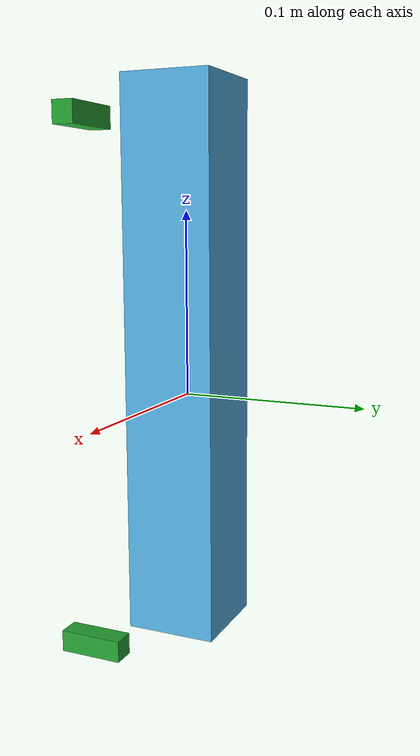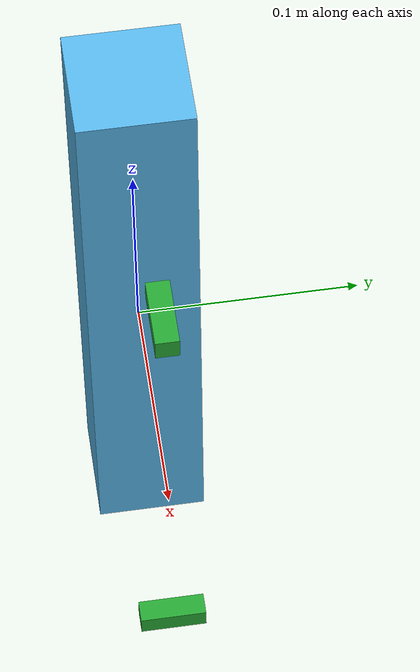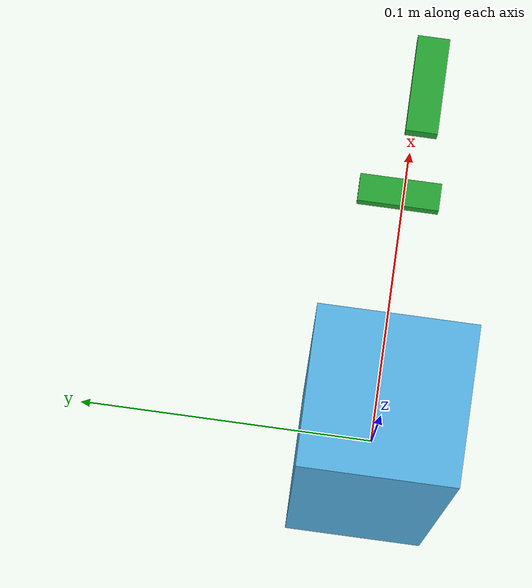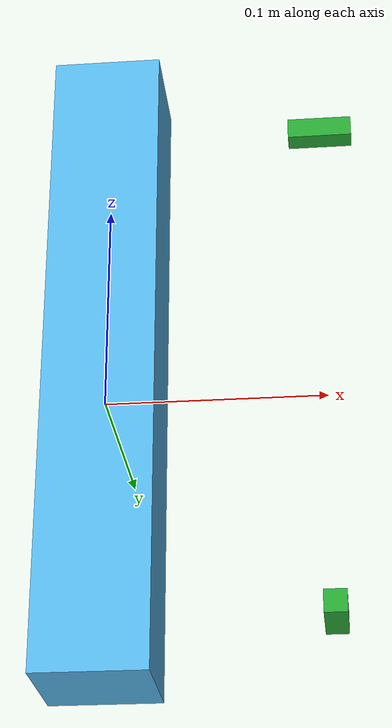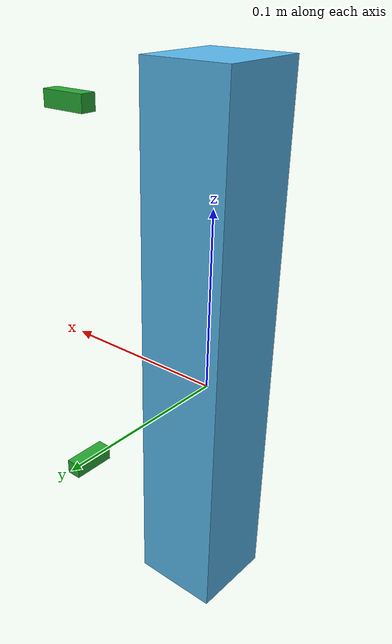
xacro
<?xml version="1.0"?>
<robot name="surveillance_camera_base" xmlns:xacro="http://www.ros.org/wiki/xacro">

  <!-- Included URDF/XACRO Files -->
  <xacro:include filename="$(find sim_environment)/urdf/camera_macro.xacro" />
  <xacro:include filename="$(find sim_environment)/urdf/ir_sensor_macro.xacro" />

  <!-- PROPERTY LIST -->
  <!--All units in m-kg-s-radians unit system -->
  <property name="M_PI" value="3.1415926535897931" />

  <!-- Main Body-base -->
  <property name="base_x_size" value="0.05" />
  <property name="base_y_size" value="0.05" />
  <property name="base_z_size" value="0.3" />
  <property name="base_mass" value="1000" /> <!-- in kg-->

  <!--Inertial macros for the box and cylinder. Units are kg*m^2-->
  <macro name="box_inertia" params="m x y z">
    <inertia  ixx="${m*(y*y+z*z)/12}" ixy = "0" ixz = "0"
              iyy="${m*(x*x+z*z)/12}" iyz = "0"
              izz="${m*(x*x+z*z)/12}" />
  </macro>

  <macro name="cylinder_inertia" params="m r h">
    <inertia  ixx="${m*(3*r*r+h*h)/12}" ixy = "0" ixz = "0"
              iyy="${m*(3*r*r+h*h)/12}" iyz = "0"
              izz="${m*r*r/2}" />
  </macro>
  <!-- BASE-FOOTPRINT -->
  <!-- base_footprint is a fictitious link(frame) that is on the ground right below base_link origin -->
  <link name="base_footprint">
    <visual>
        <origin xyz="0 0 0" rpy="0 0 0" />
        <geometry>
            <box size="0.001 0.001 0.001" />
        </geometry>
    </visual>
  </link>

  <gazebo reference="base_footprint">
    <turnGravityOff>false</turnGravityOff>
    <static>true</static>
  </gazebo>

  <!-- BASE-LINK -->
  <!--Actual body/chassis of the robot-->
  <link name="base_link">
    <inertial>
      <mass value="${base_mass}" />
      <origin xyz="0 0 0" />
      <!--The 3x3 rotational inertia matrix. -->
      <box_inertia  m="${base_mass}" x="${base_x_size}" y="${base_y_size}" z="${base_z_size}"/>
    </inertial>
    <visual>
      <origin xyz="0 0 0" rpy="0 0 ${-M_PI/2}" />
      <geometry>
        <box size="${base_x_size} ${base_y_size} ${base_z_size}"/>
      </geometry>
    </visual>
    <collision>
      <origin xyz="0 0 0" rpy="0 0 0 " />
      <geometry>
        <box size="${base_x_size} ${base_y_size} ${base_z_size}"/>
      </geometry>
    </collision>
  </link>
  <gazebo reference="base_link">
    <turnGravityOff>false</turnGravityOff>
  </gazebo>

  <joint name="base_footprint_joint" type="fixed">
    <origin xyz="0 0 0.02" rpy="0 0 0" />
    <parent link="base_footprint"/>
    <child link="base_link" />
  </joint>

  <!-- camera -->
  <camera_macro parent="base_link" prefix="surveillance_camera" xyz="0.1 0.0 0.12"/>
  <ir_sensor_macro parent="base_link" prefix="ir_sensor" xyz="0.1 0.0 -0.12"/>

  <gazebo>
    <plugin name="gazebo_ros_control" filename="libgazebo_ros_control.so" />
  </gazebo>

</robot>

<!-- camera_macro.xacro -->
<robot name="wheel_robot" xmlns:xacro="http://ros.org/wiki/xacro">
  <xacro:macro name="camera_macro" params="parent prefix xyz">
    <joint name="${prefix}_joint" type="fixed">
      <parent link="${parent}"/>
      <child  link="${prefix}_link"/>
      <origin xyz="${xyz}" rpy="${radians(-90)} 0 ${radians(-90)}"/>
    </joint>
    <link name="${prefix}_link">
      <visual>
        <origin xyz="0 0 0" rpy="0 0 0" />
        <geometry>
          <box size="0.01 0.01 0.03" />
        </geometry>
        <material name="Green" />
      </visual>
    </link>
    <gazebo reference="${prefix}_link">
      <sensor type="camera" name="${prefix}">
        <update_rate>10.0</update_rate>
        <camera name="${prefix}">
          <pose>0 0 0 0 ${radians(-90)} ${radians(90)}</pose>
          <horizontal_fov>2</horizontal_fov>
          <image>
            <width>320</width>
            <height>240</height>
            <format>R8G8B8</format>
          </image>
          <clip>
            <near>0.02</near>
            <far>300</far>
          </clip>
          <noise>
            <type>gaussian</type>
            <mean>0.0</mean>
            <stddev>0.007</stddev>
          </noise>
        </camera>
        <plugin name="camera_controller" filename="libgazebo_ros_camera.so">
          <alwaysOn>true</alwaysOn>
          <updateRate>0.0</updateRate>
          <cameraName>${prefix}</cameraName>
          <imageTopicName>image_raw</imageTopicName>
          <cameraInfoTopicName>camera_info</cameraInfoTopicName>
          <frameName>${prefix}_link</frameName>
          <hackBaseline>0.0</hackBaseline>
          <distortionK1>0.0</distortionK1>
          <distortionK2>0.0</distortionK2>
          <distortionK3>0.0</distortionK3>
          <distortionT1>0.0</distortionT1>
          <distortionT2>0.0</distortionT2>
        </plugin>
      </sensor>
    </gazebo>
  </xacro:macro>

  <xacro:macro name="camera_macro_640x480" params="parent prefix xyz">
    <joint name="${prefix}_joint" type="fixed">
      <parent link="${parent}"/>
      <child  link="${prefix}_link"/>
      <origin xyz="${xyz}" rpy="${radians(-90)} 0 ${radians(-90)}"/>
    </joint>
    <link name="${prefix}_link">
      <visual>
        <origin xyz="0 0 0" rpy="0 0 0" />
        <geometry>
          <box size="0.01 0.01 0.03" />
        </geometry>
        <material name="Green" />
      </visual>
    </link>
    <gazebo reference="${prefix}_link">
      <sensor type="camera" name="${prefix}">
        <update_rate>10.0</update_rate>
        <camera name="${prefix}">
          <pose>0 0 0 0 ${radians(-90)} ${radians(90)}</pose>
          <horizontal_fov>2</horizontal_fov>
          <image>
            <width>640</width>
            <height>480</height>
            <format>R8G8B8</format>
          </image>
          <clip>
            <near>0.02</near>
            <far>300</far>
          </clip>
          <noise>
            <type>gaussian</type>
            <mean>0.0</mean>
            <stddev>0.007</stddev>
          </noise>
        </camera>
        <plugin name="camera_controller" filename="libgazebo_ros_camera.so">
          <alwaysOn>true</alwaysOn>
          <updateRate>0.0</updateRate>
          <cameraName>${prefix}</cameraName>
          <imageTopicName>image_raw</imageTopicName>
          <cameraInfoTopicName>camera_info</cameraInfoTopicName>
          <frameName>${prefix}_link</frameName>
          <hackBaseline>0.0</hackBaseline>
          <distortionK1>0.0</distortionK1>
          <distortionK2>0.0</distortionK2>
          <distortionK3>0.0</distortionK3>
          <distortionT1>0.0</distortionT1>
          <distortionT2>0.0</distortionT2>
        </plugin>
      </sensor>
    </gazebo>
  </xacro:macro>

  <xacro:macro name="camera_macro_perspective_720x480" params="parent prefix xyz x_rot y_rot z_rot">
    <joint name="${prefix}_joint" type="fixed">
      <parent link="${parent}"/>
      <child  link="${prefix}_link"/>
      <origin xyz="${xyz}" rpy="${radians(-90)} 0 ${radians(-90)}"/>
    </joint>
    <link name="${prefix}_link">
      <visual>
        <origin xyz="0 0 0" rpy="0 0 0" />
        <geometry>
          <box size="0.01 0.01 0.03" />
        </geometry>
        <material name="Green" />
      </visual>
    </link>
    <gazebo reference="${prefix}_link">
      <sensor type="camera" name="${prefix}">
        <update_rate>10.0</update_rate>
        <camera name="${prefix}">
          <pose>0 0 0 ${radians(x_rot)} ${radians(y_rot)} ${radians(z_rot)}"</pose>
          <horizontal_fov>1.4</horizontal_fov>
          <image>
            <width>720</width>
            <height>480</height>
            <format>R8G8B8</format>
          </image>
          <clip>
            <near>0.02</near><!--default 0.02-->
            <far>50</far>
          </clip>
          <noise>
            <type>gaussian</type>
            <mean>0.0</mean>
            <stddev>0.007</stddev>
          </noise>
        </camera>
        <plugin name="camera_controller" filename="libgazebo_ros_camera.so">
          <alwaysOn>true</alwaysOn>
          <updateRate>0.0</updateRate>
          <cameraName>${prefix}</cameraName>
          <imageTopicName>image_raw</imageTopicName>
          <cameraInfoTopicName>camera_info</cameraInfoTopicName>
          <frameName>${prefix}_link</frameName>
          <hackBaseline>0.0</hackBaseline>
          <distortionK1>0.0</distortionK1>
          <distortionK2>0.0</distortionK2>
          <distortionK3>0.0</distortionK3>
          <distortionT1>0.0</distortionT1>
          <distortionT2>0.0</distortionT2>
        </plugin>
      </sensor>
    </gazebo>
  </xacro:macro>

  <xacro:macro name="camera_macro_perspective2_720x480" params="parent prefix xyz x_rot y_rot z_rot">
    <joint name="${prefix}_joint" type="fixed">
      <parent link="${parent}"/>
      <child  link="${prefix}_link"/>
      <origin xyz="${xyz}" rpy="${radians(-90)} 0 ${radians(-90)}"/>
    </joint>
    <link name="${prefix}_link">
      <visual>
        <origin xyz="0 0 0" rpy="0 0 0" />
        <geometry>
          <box size="0.01 0.01 0.03" />
        </geometry>
        <material name="Green" />
      </visual>
    </link>
    <gazebo reference="${prefix}_link">
      <sensor type="camera" name="${prefix}">
        <update_rate>10.0</update_rate>
        <camera name="${prefix}">
          <pose>0 0 0 ${radians(x_rot)} ${radians(y_rot)} ${radians(z_rot)}"</pose>
          <horizontal_fov>0.9</horizontal_fov>
          <image>
            <width>720</width>
            <height>480</height>
            <format>R8G8B8</format>
          </image>
          <clip>
            <near>0.02</near><!--default 0.02-->
            <far>50</far>
          </clip>
          <noise>
            <type>gaussian</type>
            <mean>0.0</mean>
            <stddev>0.007</stddev>
          </noise>
        </camera>
        <plugin name="camera_controller" filename="libgazebo_ros_camera.so">
          <alwaysOn>true</alwaysOn>
          <updateRate>0.0</updateRate>
          <cameraName>${prefix}</cameraName>
          <imageTopicName>image_raw</imageTopicName>
          <cameraInfoTopicName>camera_info</cameraInfoTopicName>
          <frameName>${prefix}_link</frameName>
          <hackBaseline>0.0</hackBaseline>
          <distortionK1>0.0</distortionK1>
          <distortionK2>0.0</distortionK2>
          <distortionK3>0.0</distortionK3>
          <distortionT1>0.0</distortionT1>
          <distortionT2>0.0</distortionT2>
        </plugin>
      </sensor>
    </gazebo>
  </xacro:macro>
</robot>

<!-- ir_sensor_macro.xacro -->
<robot name="surveillance_camera" xmlns:xacro="http://ros.org/wiki/xacro">
  <xacro:macro name="ir_sensor_macro" params="parent prefix xyz">
    <joint name="${prefix}_joint" type="fixed">
      <parent link="${parent}"/>
      <child  link="${prefix}_link"/>
      <origin xyz="${xyz}" rpy="${radians(-90)} 0 0"/>
    </joint>
    <link name="${prefix}_link">
      <visual>
        <origin xyz="0 0 0" rpy="0 0 0" />
        <geometry>
          <box size="0.01 0.01 0.03" />
        </geometry>
        <material name="Green" />
      </visual>
    </link>
    <gazebo reference="${prefix}_link">
      <sensor type="ray" name="TeraRanger">
        <pose>0 0 0 0 0 0</pose>
        <visualize>true</visualize>
        <update_rate>50</update_rate>
        <ray>
          <scan>
              <horizontal>
                <samples>1</samples>
                <resolution>1</resolution>
                <min_angle>-0.014835</min_angle>
                <max_angle>0.014835</max_angle>
              </horizontal>
              <vertical>
                <samples>1</samples>
                <resolution>1</resolution>
                <min_angle>-0.014835</min_angle>
                <max_angle>0.014835</max_angle>
              </vertical>
          </scan>
          <range>
              <min>0.01</min>
              <max>2</max>
              <resolution>0.02</resolution>
          </range>
        </ray>
        <plugin filename="libgazebo_ros_range.so" name="gazebo_ros_range">
          <gaussianNoise>0.005</gaussianNoise>
          <alwaysOn>true</alwaysOn>
          <updateRate>50</updateRate>
          <topicName>ir_sensor</topicName>
          <frameName>${prefix}_link</frameName>
          <radiation>INFRARED</radiation>
          <fov>0.02967</fov>
        </plugin>
    </sensor>
   </gazebo>
  </xacro:macro>
</robot>
